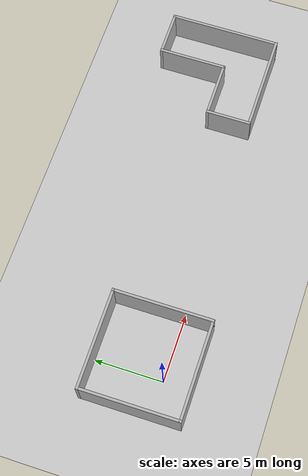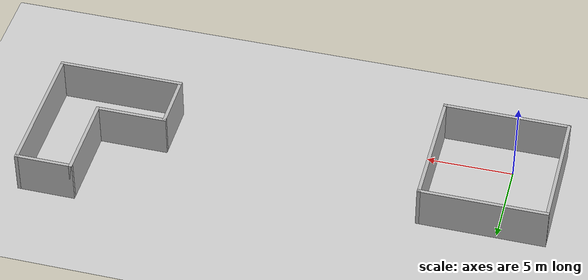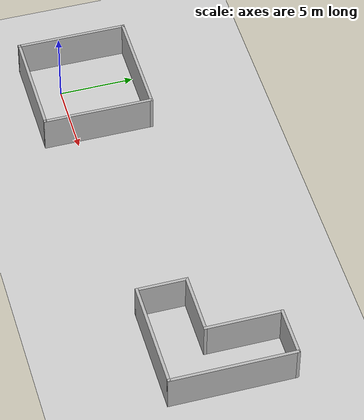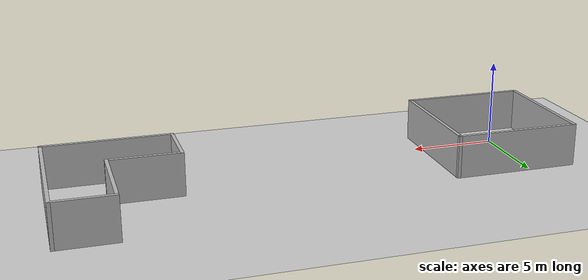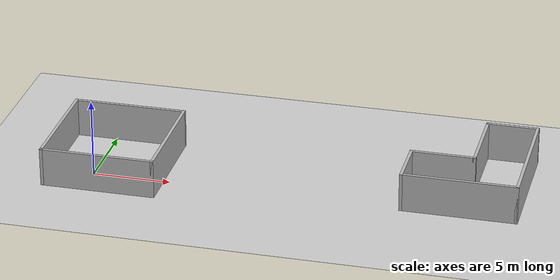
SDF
<?xml version="1.0" ?>
<sdf version="1.4">
	<world name="feedback_experiment_worlds">
		<scene>
			<sky/>
		</scene>
		<include>
			<uri>model://ground_plane</uri>
		</include>
		<include>
			<uri>model://sun</uri>
		</include>
		<model name='World_Quad'>
			<link name='Wall_1'>
				<collision name='Wall_1_Collision'>
					<geometry>
						<box>
							<size>7.4 0.2 2.5</size>
						</box>
					</geometry>
					<pose>0 0 1.25 0 -0 0</pose>
				</collision>
				<visual name='Wall_1_Visual'>
					<pose>0 0 1.25 0 -0 0</pose>
					<geometry>
						<box>
							<size>7.4 0.2 2.5</size>
						</box>
					</geometry>
					<material>
						<script>
							<uri>file://media/materials/scripts/kitchen.material</uri>
							<name>Kitchen/Wall</name>
						</script>
					</material>
				</visual>
				<velocity_decay>
					<linear>0</linear>
					<angular>0</angular>
				</velocity_decay>
				<pose>-2.7 1.5 0 0 0 -1.5708</pose>
			</link>
			<link name='Wall_2'>
				<collision name='Wall_2_Collision'>
					<geometry>
						<box>
							<size>7.4 0.2 2.5</size>
						</box>
					</geometry>
					<pose>0 0 1.25 0 -0 0</pose>
				</collision>
				<visual name='Wall_2_Visual'>
					<pose>0 0 1.25 0 -0 0</pose>
					<geometry>
						<box>
							<size>7.4 0.2 2.5</size>
						</box>
					</geometry>
					<material>
						<script>
							<uri>file://media/materials/scripts/kitchen.material</uri>
							<name>Kitchen/Wall</name>
						</script>
					</material>
				</visual>
				<velocity_decay>
					<linear>0</linear>
					<angular>0</angular>
				</velocity_decay>
				<pose>0.9 -2.1 0 0 -0 0</pose>
			</link>
			<link name='Wall_3'>
				<collision name='Wall_3_Collision'>
					<geometry>
						<box>
							<size>7.4 0.2 2.5</size>
						</box>
					</geometry>
					<pose>0 0 1.25 0 -0 0</pose>
				</collision>
				<visual name='Wall_3_Visual'>
					<pose>0 0 1.25 0 -0 0</pose>
					<geometry>
						<box>
							<size>7.4 0.2 2.5</size>
						</box>
					</geometry>
					<material>
						<script>
							<uri>file://media/materials/scripts/kitchen.material</uri>
							<name>Kitchen/Wall</name>
						</script>
					</material>
				</visual>
				<velocity_decay>
					<linear>0</linear>
					<angular>0</angular>
				</velocity_decay>
				<pose>4.5 1.5 0 0 -0 1.5708</pose>
			</link>
			<link name='Wall_4'>
				<collision name='Wall_4_Collision'>
					<geometry>
						<box>
							<size>7.4 0.2 2.5</size>
						</box>
					</geometry>
					<pose>0 0 1.25 0 -0 0</pose>
				</collision>
				<visual name='Wall_4_Visual'>
					<pose>0 0 1.25 0 -0 0</pose>
					<geometry>
						<box>
							<size>7.4 0.2 2.5</size>
						</box>
					</geometry>
					<material>
						<script>
							<uri>file://media/materials/scripts/kitchen.material</uri>
							<name>Kitchen/Wall</name>
						</script>
					</material>
				</visual>
				<velocity_decay>
					<linear>0</linear>
					<angular>0</angular>
				</velocity_decay>
				<pose>0.9 5.1 0 0 -0 3.14159</pose>
			</link>
			<static>1</static>
		</model>
		<model name='World_L'>
			<link name='Wall_1'>
				<collision name='Wall_1_Collision'>
					<geometry>
						<box>
							<size>4.2 0.2 2.5</size>
						</box>
					</geometry>
					<pose>0 0 1.25 0 -0 0</pose>
				</collision>
				<visual name='Wall_1_Visual'>
					<pose>0 0 1.25 0 -0 0</pose>
					<geometry>
						<box>
							<size>4.2 0.2 2.5</size>
						</box>
					</geometry>
					<material>
						<script>
							<uri>file://media/materials/scripts/kitchen.material</uri>
							<name>Kitchen/Wall</name>
						</script>
					</material>
				</visual>
				<velocity_decay>
					<linear>0</linear>
					<angular>0</angular>
				</velocity_decay>
				<pose>1.8 3.1 0 0 -0 3.14159</pose>
			</link>
			<link name='Wall_2'>
				<collision name='Wall_2_Collision'>
					<geometry>
						<box>
							<size>3.4 0.2 2.5</size>
						</box>
					</geometry>
					<pose>0 0 1.25 0 -0 0</pose>
				</collision>
				<visual name='Wall_2_Visual'>
					<pose>0 0 1.25 0 -0 0</pose>
					<geometry>
						<box>
							<size>3.4 0.2 2.5</size>
						</box>
					</geometry>
					<material>
						<script>
							<uri>file://media/materials/scripts/kitchen.material</uri>
							<name>Kitchen/Wall</name>
						</script>
					</material>
				</visual>
				<velocity_decay>
					<linear>0</linear>
					<angular>0</angular>
				</velocity_decay>
				<pose>-0.2 1.5 0 0 0 -1.5708</pose>
			</link>
			<link name='Wall_3'>
				<collision name='Wall_3_Collision'>
					<geometry>
						<box>
							<size>7.4 0.2 2.5</size>
						</box>
					</geometry>
					<pose>0 0 1.25 0 -0 0</pose>
				</collision>
				<visual name='Wall_3_Visual'>
					<pose>0 0 1.25 0 -0 0</pose>
					<geometry>
						<box>
							<size>7.4 0.2 2.5</size>
						</box>
					</geometry>
					<material>
						<script>
							<uri>file://media/materials/scripts/kitchen.material</uri>
							<name>Kitchen/Wall</name>
						</script>
					</material>
				</visual>
				<velocity_decay>
					<linear>0</linear>
					<angular>0</angular>
				</velocity_decay>
				<pose>3.4 -0.1 0 0 -0 0</pose>
			</link>
			<link name='Wall_4'>
				<collision name='Wall_4_Collision'>
					<geometry>
						<box>
							<size>8.3 0.2 2.5</size>
						</box>
					</geometry>
					<pose>0 0 1.25 0 -0 0</pose>
				</collision>
				<visual name='Wall_4_Visual'>
					<pose>0 0 1.25 0 -0 0</pose>
					<geometry>
						<box>
							<size>8.3 0.2 2.5</size>
						</box>
					</geometry>
					<material>
						<script>
							<uri>file://media/materials/scripts/kitchen.material</uri>
							<name>Kitchen/Wall</name>
						</script>
					</material>
				</visual>
				<velocity_decay>
					<linear>0</linear>
					<angular>0</angular>
				</velocity_decay>
				<pose>7 3.95 0 0 -0 1.5708</pose>
			</link>
			<link name='Wall_5'>
				<collision name='Wall_5_Collision'>
					<geometry>
						<box>
							<size>3.4 0.2 2.5</size>
						</box>
					</geometry>
					<pose>0 0 1.25 0 -0 0</pose>
				</collision>
				<visual name='Wall_5_Visual'>
					<pose>0 0 1.25 0 -0 0</pose>
					<geometry>
						<box>
							<size>3.4 0.2 2.5</size>
						</box>
					</geometry>
					<material>
						<script>
							<uri>file://media/materials/scripts/kitchen.material</uri>
							<name>Kitchen/Wall</name>
						</script>
					</material>
				</visual>
				<velocity_decay>
					<linear>0</linear>
					<angular>0</angular>
				</velocity_decay>
				<pose>5.4 8 0 0 -0 3.14159</pose>
			</link>
			<link name='Wall_6'>
				<collision name='Wall_6_Collision'>
					<geometry>
						<box>
							<size>5.1 0.2 2.5</size>
						</box>
					</geometry>
					<pose>0 0 1.25 0 -0 0</pose>
				</collision>
				<visual name='Wall_6_Visual'>
					<pose>0 0 1.25 0 -0 0</pose>
					<geometry>
						<box>
							<size>5.1 0.2 2.5</size>
						</box>
					</geometry>
					<material>
						<script>
							<uri>file://media/materials/scripts/kitchen.material</uri>
							<name>Kitchen/Wall</name>
						</script>
					</material>
				</visual>
				<velocity_decay>
					<linear>0</linear>
					<angular>0</angular>
				</velocity_decay>
				<pose>3.8 5.55 0 0 0 -1.5708</pose>
			</link>
			<pose>20 0 0 0 0 0</pose>
			<static>1</static>
		</model>
		<gui fullscreen='0'>
            <camera name='user_camera'>
                <pose>2.0 1.5 20.0 -1.5708 1.5708 0.0</pose>
                <view_controller>orbit</view_controller>
            </camera>
        </gui>
	</world>
</sdf>
